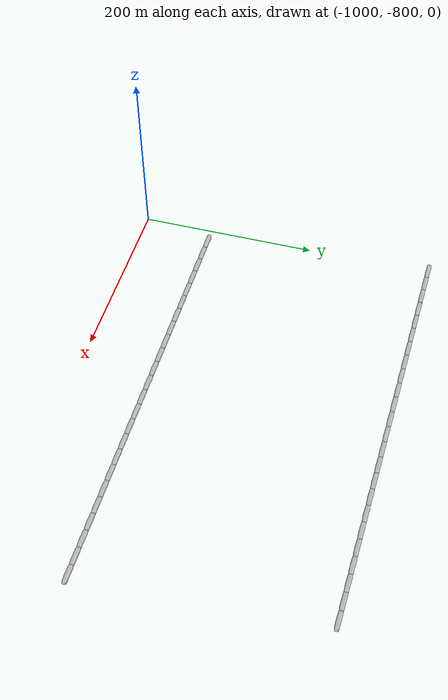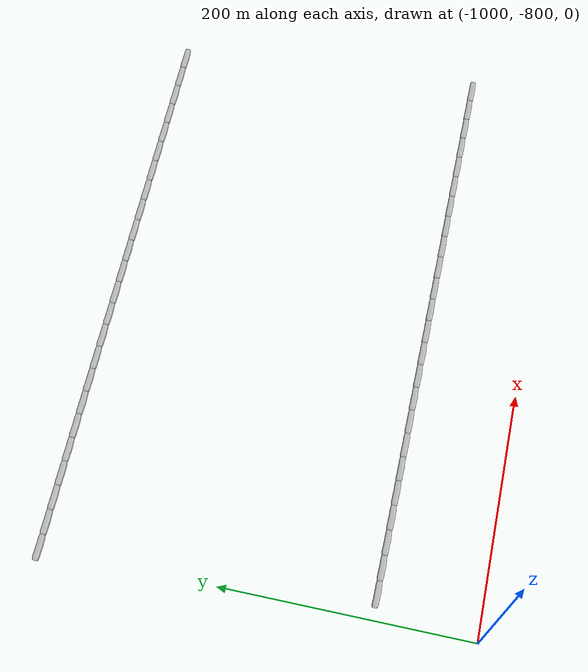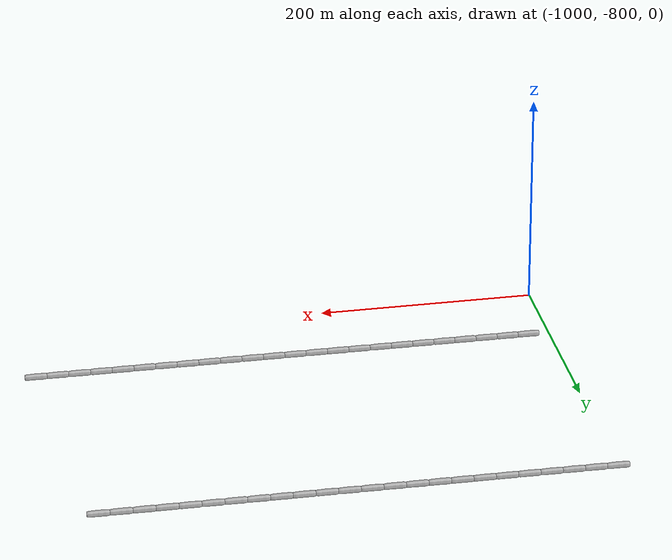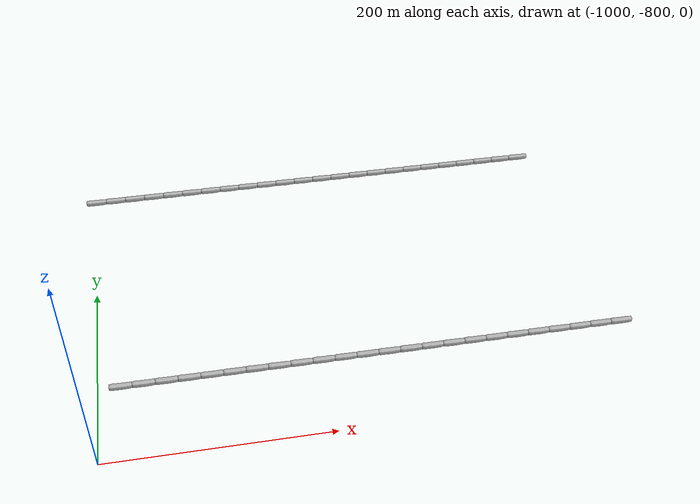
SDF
<sdf version="1.6">
 <world name="cave_16000_64">
  <include>
   <static>true</static>
   <name>cave_-26_-36</name>
   <pose>-520 -720 0 0 0 1.5707963267948966</pose>
   <uri>model://cave_straight_20m</uri>
  </include>
  <include>
   <static>true</static>
   <name>cave_-27_-36</name>
   <pose>-540 -720 0 0 0 1.5707963267948966</pose>
   <uri>model://cave_straight_20m</uri>
  </include>
  <include>
   <static>true</static>
   <name>cave_-28_-36</name>
   <pose>-560 -720 0 0 0 1.5707963267948966</pose>
   <uri>model://cave_straight_20m</uri>
  </include>
  <include>
   <static>true</static>
   <name>cave_-29_-36</name>
   <pose>-580 -720 0 0 0 1.5707963267948966</pose>
   <uri>model://cave_straight_20m</uri>
  </include>
  <include>
   <static>true</static>
   <name>cave_-30_-36</name>
   <pose>-600 -720 0 0 0 1.5707963267948966</pose>
   <uri>model://cave_straight_20m</uri>
  </include>
  <include>
   <static>true</static>
   <name>cave_-31_-36</name>
   <pose>-620 -720 0 0 0 1.5707963267948966</pose>
   <uri>model://cave_straight_20m</uri>
  </include>
  <include>
   <static>true</static>
   <name>cave_-32_-36</name>
   <pose>-640 -720 0 0 0 1.5707963267948966</pose>
   <uri>model://cave_straight_20m</uri>
  </include>
  <include>
   <static>true</static>
   <name>cave_-33_-36</name>
   <pose>-660 -720 0 0 0 1.5707963267948966</pose>
   <uri>model://cave_straight_20m</uri>
  </include>
  <include>
   <static>true</static>
   <name>cave_-34_-36</name>
   <pose>-680 -720 0 0 0 1.5707963267948966</pose>
   <uri>model://cave_straight_20m</uri>
  </include>
  <include>
   <static>true</static>
   <name>cave_-35_-36</name>
   <pose>-700 -720 0 0 0 1.5707963267948966</pose>
   <uri>model://cave_straight_20m</uri>
  </include>
  <include>
   <static>true</static>
   <name>cave_-36_-36</name>
   <pose>-720 -720 0 0 0 1.5707963267948966</pose>
   <uri>model://cave_straight_20m</uri>
  </include>
  <include>
   <static>true</static>
   <name>cave_-37_-36</name>
   <pose>-740 -720 0 0 0 1.5707963267948966</pose>
   <uri>model://cave_straight_20m</uri>
  </include>
  <include>
   <static>true</static>
   <name>cave_-38_-36</name>
   <pose>-760 -720 0 0 0 1.5707963267948966</pose>
   <uri>model://cave_straight_20m</uri>
  </include>
  <include>
   <static>true</static>
   <name>cave_-39_-36</name>
   <pose>-780 -720 0 0 0 1.5707963267948966</pose>
   <uri>model://cave_straight_20m</uri>
  </include>
  <include>
   <static>true</static>
   <name>cave_-40_-36</name>
   <pose>-800 -720 0 0 0 1.5707963267948966</pose>
   <uri>model://cave_straight_20m</uri>
  </include>
  <include>
   <static>true</static>
   <name>cave_-41_-36</name>
   <pose>-820 -720 0 0 0 1.5707963267948966</pose>
   <uri>model://cave_straight_20m</uri>
  </include>
  <include>
   <static>true</static>
   <name>cave_-42_-36</name>
   <pose>-840 -720 0 0 0 1.5707963267948966</pose>
   <uri>model://cave_straight_20m</uri>
  </include>
  <include>
   <static>true</static>
   <name>cave_-43_-36</name>
   <pose>-860 -720 0 0 0 1.5707963267948966</pose>
   <uri>model://cave_straight_20m</uri>
  </include>
  <include>
   <static>true</static>
   <name>cave_-44_-36</name>
   <pose>-880 -720 0 0 0 1.5707963267948966</pose>
   <uri>model://cave_straight_20m</uri>
  </include>
  <include>
   <static>true</static>
   <name>cave_-45_-36</name>
   <pose>-900 -720 0 0 0 1.5707963267948966</pose>
   <uri>model://cave_straight_20m</uri>
  </include>
  <include>
   <static>true</static>
   <name>cave_-46_-36</name>
   <pose>-920 -720 0 0 0 1.5707963267948966</pose>
   <uri>model://cave_straight_20m</uri>
  </include>
  <include>
   <static>true</static>
   <name>cave_-47_-36</name>
   <pose>-940 -720 0 0 0 1.5707963267948966</pose>
   <uri>model://cave_straight_20m</uri>
  </include>
  <include>
   <static>true</static>
   <name>cave_-48_-36</name>
   <pose>-960 -720 0 0 0 1.5707963267948966</pose>
   <uri>model://cave_straight_20m</uri>
  </include>
  <include>
   <static>true</static>
   <name>cave_-49_-36</name>
   <pose>-980 -720 0 0 0 1.5707963267948966</pose>
   <uri>model://cave_straight_20m</uri>
  </include>
  <include>
   <static>true</static>
   <name>cave_-27_-23</name>
   <pose>-540 -460 0 0 0 1.5707963267948966</pose>
   <uri>model://cave_straight_20m</uri>
  </include>
  <include>
   <static>true</static>
   <name>cave_-28_-23</name>
   <pose>-560 -460 0 0 0 1.5707963267948966</pose>
   <uri>model://cave_straight_20m</uri>
  </include>
  <include>
   <static>true</static>
   <name>cave_-29_-23</name>
   <pose>-580 -460 0 0 0 1.5707963267948966</pose>
   <uri>model://cave_straight_20m</uri>
  </include>
  <include>
   <static>true</static>
   <name>cave_-30_-23</name>
   <pose>-600 -460 0 0 0 1.5707963267948966</pose>
   <uri>model://cave_straight_20m</uri>
  </include>
  <include>
   <static>true</static>
   <name>cave_-31_-23</name>
   <pose>-620 -460 0 0 0 1.5707963267948966</pose>
   <uri>model://cave_straight_20m</uri>
  </include>
  <include>
   <static>true</static>
   <name>cave_-32_-23</name>
   <pose>-640 -460 0 0 0 1.5707963267948966</pose>
   <uri>model://cave_straight_20m</uri>
  </include>
  <include>
   <static>true</static>
   <name>cave_-33_-23</name>
   <pose>-660 -460 0 0 0 1.5707963267948966</pose>
   <uri>model://cave_straight_20m</uri>
  </include>
  <include>
   <static>true</static>
   <name>cave_-34_-23</name>
   <pose>-680 -460 0 0 0 1.5707963267948966</pose>
   <uri>model://cave_straight_20m</uri>
  </include>
  <include>
   <static>true</static>
   <name>cave_-35_-23</name>
   <pose>-700 -460 0 0 0 1.5707963267948966</pose>
   <uri>model://cave_straight_20m</uri>
  </include>
  <include>
   <static>true</static>
   <name>cave_-36_-23</name>
   <pose>-720 -460 0 0 0 1.5707963267948966</pose>
   <uri>model://cave_straight_20m</uri>
  </include>
  <include>
   <static>true</static>
   <name>cave_-37_-23</name>
   <pose>-740 -460 0 0 0 1.5707963267948966</pose>
   <uri>model://cave_straight_20m</uri>
  </include>
  <include>
   <static>true</static>
   <name>cave_-38_-23</name>
   <pose>-760 -460 0 0 0 1.5707963267948966</pose>
   <uri>model://cave_straight_20m</uri>
  </include>
  <include>
   <static>true</static>
   <name>cave_-39_-23</name>
   <pose>-780 -460 0 0 0 1.5707963267948966</pose>
   <uri>model://cave_straight_20m</uri>
  </include>
  <include>
   <static>true</static>
   <name>cave_-40_-23</name>
   <pose>-800 -460 0 0 0 1.5707963267948966</pose>
   <uri>model://cave_straight_20m</uri>
  </include>
  <include>
   <static>true</static>
   <name>cave_-41_-23</name>
   <pose>-820 -460 0 0 0 1.5707963267948966</pose>
   <uri>model://cave_straight_20m</uri>
  </include>
  <include>
   <static>true</static>
   <name>cave_-42_-23</name>
   <pose>-840 -460 0 0 0 1.5707963267948966</pose>
   <uri>model://cave_straight_20m</uri>
  </include>
  <include>
   <static>true</static>
   <name>cave_-43_-23</name>
   <pose>-860 -460 0 0 0 1.5707963267948966</pose>
   <uri>model://cave_straight_20m</uri>
  </include>
  <include>
   <static>true</static>
   <name>cave_-44_-23</name>
   <pose>-880 -460 0 0 0 1.5707963267948966</pose>
   <uri>model://cave_straight_20m</uri>
  </include>
  <include>
   <static>true</static>
   <name>cave_-45_-23</name>
   <pose>-900 -460 0 0 0 1.5707963267948966</pose>
   <uri>model://cave_straight_20m</uri>
  </include>
  <include>
   <static>true</static>
   <name>cave_-46_-23</name>
   <pose>-920 -460 0 0 0 1.5707963267948966</pose>
   <uri>model://cave_straight_20m</uri>
  </include>
  <include>
   <static>true</static>
   <name>cave_-47_-23</name>
   <pose>-940 -460 0 0 0 1.5707963267948966</pose>
   <uri>model://cave_straight_20m</uri>
  </include>
  <include>
   <static>true</static>
   <name>cave_-48_-23</name>
   <pose>-960 -460 0 0 0 1.5707963267948966</pose>
   <uri>model://cave_straight_20m</uri>
  </include>
  <include>
   <static>true</static>
   <name>cave_-49_-23</name>
   <pose>-980 -460 0 0 0 1.5707963267948966</pose>
   <uri>model://cave_straight_20m</uri>
  </include>
  <include>
   <static>true</static>
   <name>cave_-50_-23</name>
   <pose>-1000 -460 0 0 0 1.5707963267948966</pose>
   <uri>model://cave_straight_20m</uri>
  </include>
 </world>
</sdf>
